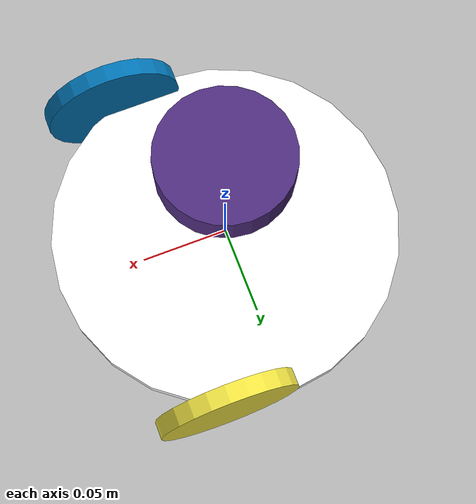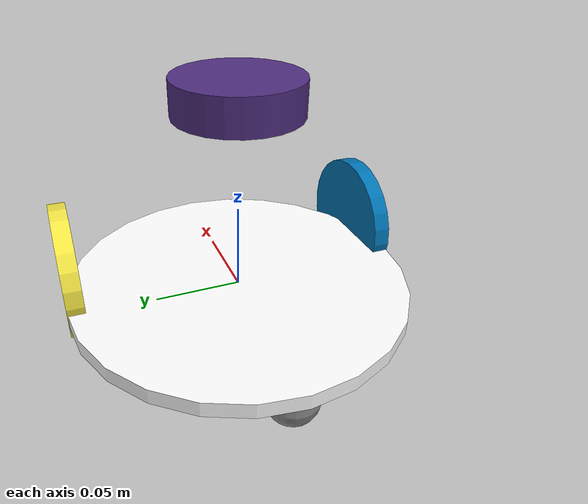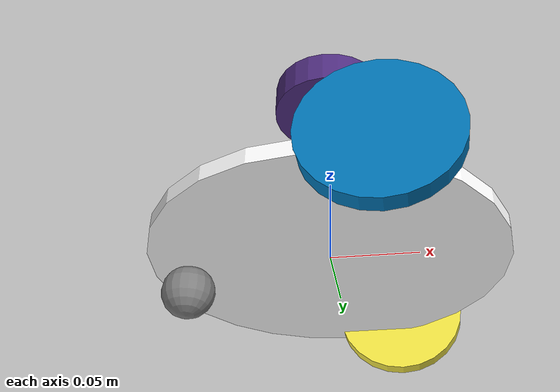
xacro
<?xml version="1.0"?>
<robot name="hexar" xmlns:xacro="https://www.ros.org/wiki/xacro">
    <!-- Refer to Nav2's URDF tutorial -->
    <!-- https://navigation.ros.org/setup_guides/urdf/setup_urdf.html -->

    <!-- define colors -->
    <material name="black">
        <color rgba="0 0 0 1" />
    </material>
    <material name="white">
        <color rgba="1 1 1 1" />
    </material>
    <material name="purple">
        <color rgba="0.3098 0.1765 0.4980 1" />
    </material>
    <material name="gray">
        <color rgba="0.5 0.5 0.5 1" />
    </material>

    <!-- Define robot constants -->
    <!-- pi -->
    <xacro:property name="PI" value="3.141592653589793" />
    <!-- base properties -->
    <xacro:property name="base_radius" value="0.1" />
    <xacro:property name="base_height" value="0.009" />
    <xacro:property name="base_mass" value="3" />
    <!-- wheel properties -->
    <xacro:property name="wheel_xoff" value="0.035" />
    <xacro:property name="wheel_yoff" value="0.095" />
    <xacro:property name="wheel_zoff" value="0.009" />
    <xacro:property name="wheel_radius" value="0.04" />
    <xacro:property name="wheel_width" value="0.01" />
    <xacro:property name="wheel_mass" value="0.2" />
    <!-- caster properties -->
    <xacro:property name="caster_xoff" value="-0.08" />
    <xacro:property name="caster_zoff" value="-0.016" />
    <xacro:property name="caster_radius" value="0.015" />
    <xacro:property name="caster_mass" value="0.1" />
    <!-- lidar properties -->
    <xacro:property name="lidar_radius" value="0.035" />
    <xacro:property name="lidar_height" value="0.02" />
    <xacro:property name="lidar_zoff" value="0.1" />
    <xacro:property name="lidar_mass" value="0.17" />
    <!-- imu properties -->

    <!-- Define intertial property macros  -->
    <xacro:macro name="box_inertia" params="m w d h">
        <inertial>
            <origin xyz="0 0 0" rpy="${pi/2} 0 ${pi/2}" />
            <mass value="${m}" />
            <inertia ixx="${(m/12) * (h*h + d*d)}" ixy="0.0" ixz="0.0" iyy="${(m/12) * (w*w + h*h)}" iyz="0.0" izz="${(m/12) * (w*w + d*d)}" />
        </inertial>
    </xacro:macro>

    <xacro:macro name="cylinder_inertia" params="m r h">
        <inertial>
            <origin xyz="0 0 0" rpy="${pi/2} 0 0" />
            <mass value="${m}" />
            <inertia ixx="${(m/12) * (3*r*r + h*h)}" ixy="0" ixz="0" iyy="${(m/12) * (3*r*r + h*h)}" iyz="0" izz="${(m/2) * (r*r)}" />
        </inertial>
    </xacro:macro>

    <xacro:macro name="sphere_inertia" params="m r">
        <inertial>
            <mass value="${m}" />
            <inertia ixx="${(2/5) * m * (r*r)}" ixy="0.0" ixz="0.0" iyy="${(2/5) * m * (r*r)}" iyz="0.0" izz="${(2/5) * m * (r*r)}" />
        </inertial>
    </xacro:macro>

    <!-- Define wheel macros -->
    <xacro:macro name="wheel" params="prefix y_reflect">
        <joint name="${prefix}_joint" type="continuous">
            <parent link="base_link" />
            <child link="${prefix}_link" />
            <origin xyz="${wheel_xoff} ${y_reflect * wheel_yoff} ${wheel_zoff}" rpy="${-PI/2} 0 0" />
            <axis xyz="0 0 1" />
        </joint>

        <link name="${prefix}_link">
            <visual>
                <geometry>
                    <cylinder radius="${wheel_radius}" length="${wheel_width}" />
                </geometry>
                <material name="navy" />
            </visual>

            <collision>
                <geometry>
                    <cylinder radius="${wheel_radius}" length="${wheel_width}" />
                </geometry>
            </collision>

            <xacro:cylinder_inertia m="${wheel_mass}" r="${wheel_radius}" h="${wheel_width}" />
        </link>

    </xacro:macro>

    <!-- Robot Base -->
    <link name="base_link">
        <visual>
            <geometry>
                <cylinder length="${base_height}" radius="${base_radius}" />
            </geometry>
            <material name="white" />
        </visual>
        <collision>
            <geometry>
                <cylinder length="${base_height}" radius="${base_radius}" />
            </geometry>
        </collision>
    </link>

    <!-- Robot Footprint -->
    <joint name="footprint_joint" type="fixed">
        <parent link="base_link" />
        <child link="base_footprint" />
        <origin xyz="0.0 0.0 ${wheel_zoff-wheel_radius}" rpy="0 0 0" />
    </joint>

    <link name="base_footprint" />

    <!-- Base Inertial -->
    <joint name="base_inertial_joint" type="fixed">
        <parent link="base_link" />
        <child link="base_inertial" />
        <origin xyz="0 0 0" rpy="0 0 0" />
    </joint>

    <link name="base_inertial">
        <xacro:cylinder_inertia m="${base_mass}" r="${base_radius}" h="${base_height}" />
    </link>

    <!-- Wheels -->
    <xacro:wheel prefix="left_wheel" y_reflect="1" />

    <xacro:wheel prefix="right_wheel" y_reflect="-1" />

    <!-- Caster ball -->
    <joint name="caster_joint" type="fixed">
        <parent link="base_link" />
        <child link="caster" />
        <origin xyz="${caster_xoff} 0.0 ${caster_zoff}" rpy="0 0 0" />
    </joint>

    <link name="caster">
        <visual>
            <geometry>
                <sphere radius="${caster_radius}" />
            </geometry>
            <material name="gray" />
        </visual>

        <collision>
            <geometry>
                <sphere radius="${caster_radius}" />
            </geometry>
        </collision>

        <xacro:sphere_inertia m="${caster_mass}" r="${caster_radius}" />
    </link>

    <!-- lidar -->
    <joint name="lidar_joint" type="fixed">
        <parent link="base_link" />
        <child link="lidar_link" />
        <origin xyz="0 0 ${(base_height+lidar_height)/2+lidar_zoff}" rpy="0 0 0" />
    </joint>

    <link name="lidar_link">
        <visual>
            <origin xyz="0 0 0" rpy="0 0 0" />
            <geometry>
                <cylinder radius="${lidar_radius}" length="${lidar_height}" />
            </geometry>
            <material name="purple" />
        </visual>
        <collision>
            <origin xyz="0 0 0" rpy="0 0 0" />
            <geometry>
                <cylinder radius="${lidar_radius}" length="${lidar_height}" />
            </geometry>
        </collision>
        <xacro:cylinder_inertia m="${lidar_mass}" r="${lidar_radius}" h="${lidar_height}" />
    </link>

    <!-- imu -->

</robot>
